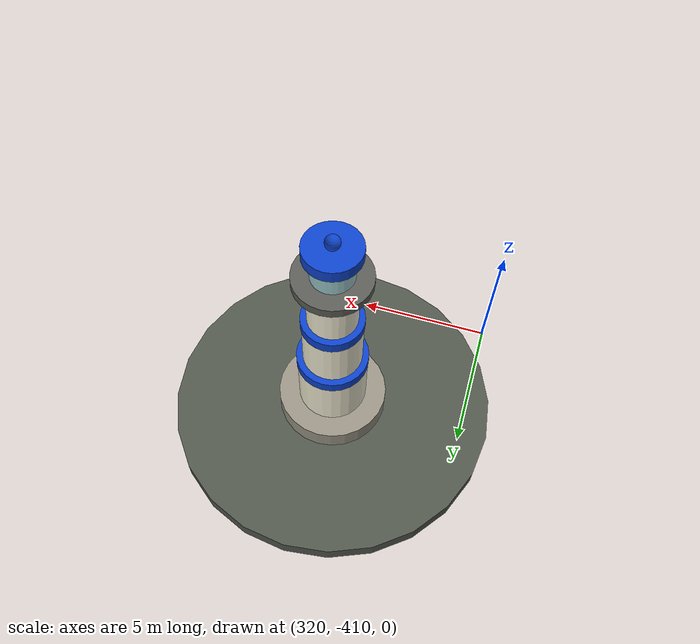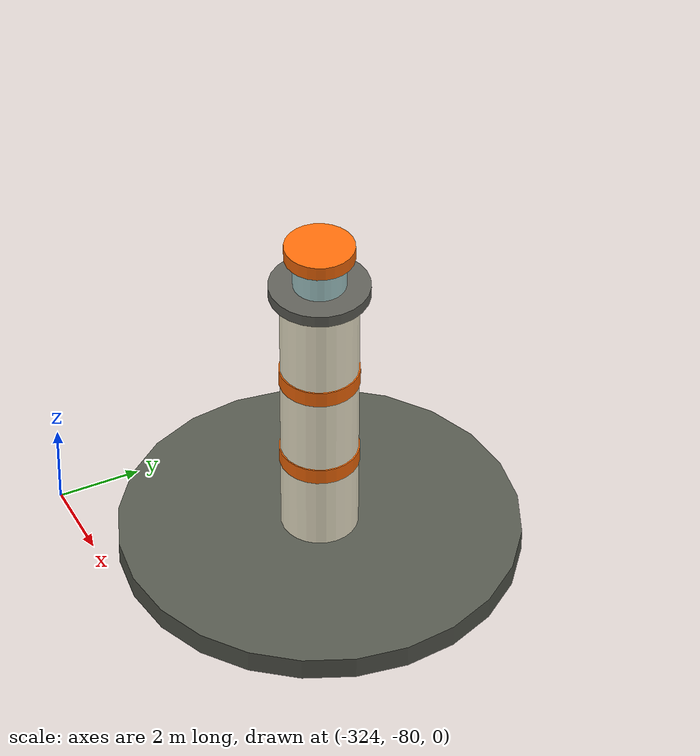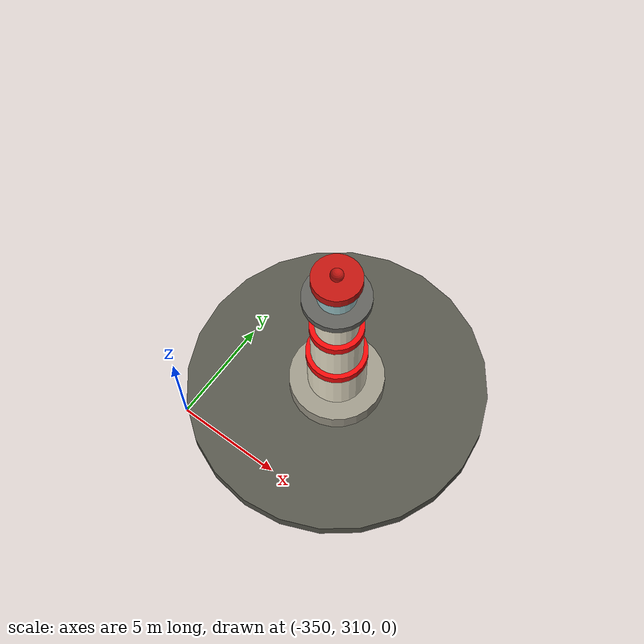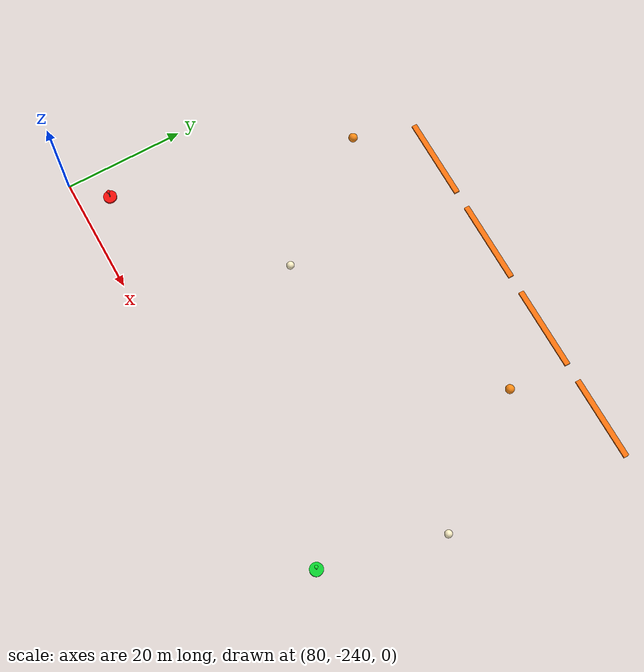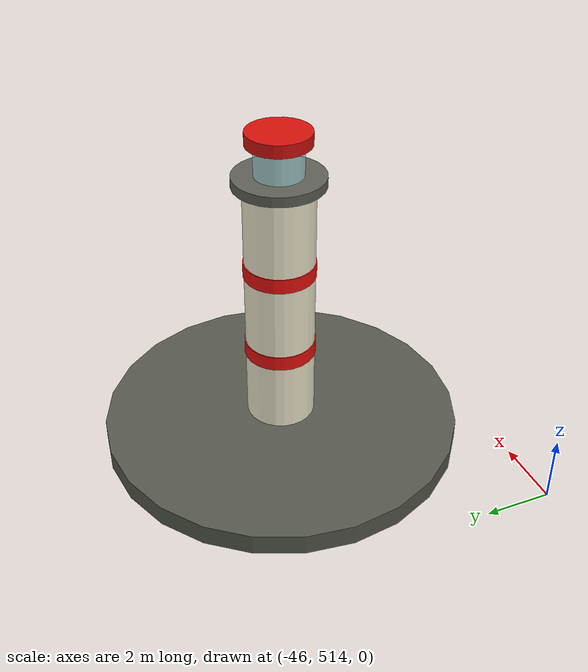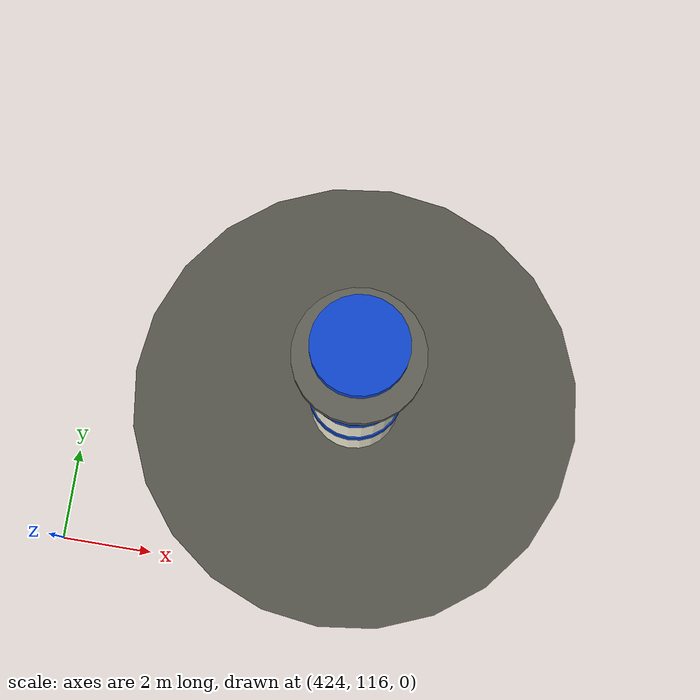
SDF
<?xml version="1.0"?>
<sdf version="1.10">
  <model name="ocean_surface_details">
    <static>true</static>
    <link name="details">
      <collision name="red_marker_1_collision"><pose>85 -235 0.35 0 0 0</pose><geometry><cylinder><radius>1.1</radius><length>0.7</length></cylinder></geometry></collision>
      <visual name="red_marker_1_base"><pose>85 -235 0.20 0 0 0</pose><geometry><cylinder><radius>1.1</radius><length>0.4</length></cylinder></geometry><material><ambient>0.45 0.02 0.02 1</ambient><diffuse>0.95 0.05 0.04 1</diffuse></material></visual>
      <visual name="red_marker_1_mast"><pose>85 -235 1.25 0 0 0</pose><geometry><cylinder><radius>0.08</radius><length>1.8</length></cylinder></geometry><material><ambient>0.18 0.18 0.16 1</ambient><diffuse>0.45 0.45 0.40 1</diffuse></material></visual>
      <visual name="red_marker_1_top"><pose>85 -235 2.25 0 0 0</pose><geometry><sphere><radius>0.28</radius></sphere></geometry><material><ambient>0.7 0.02 0.02 1</ambient><diffuse>1 0.04 0.04 1</diffuse></material></visual>

      <collision name="green_marker_1_collision"><pose>155 -235 0.35 0 0 0</pose><geometry><cylinder><radius>1.1</radius><length>0.7</length></cylinder></geometry></collision>
      <visual name="green_marker_1_base"><pose>155 -235 0.20 0 0 0</pose><geometry><cylinder><radius>1.1</radius><length>0.4</length></cylinder></geometry><material><ambient>0.02 0.34 0.08 1</ambient><diffuse>0.04 0.82 0.18 1</diffuse></material></visual>
      <visual name="green_marker_1_mast"><pose>155 -235 1.25 0 0 0</pose><geometry><cylinder><radius>0.08</radius><length>1.8</length></cylinder></geometry><material><ambient>0.18 0.18 0.16 1</ambient><diffuse>0.45 0.45 0.40 1</diffuse></material></visual>
      <visual name="green_marker_1_top"><pose>155 -235 2.25 0 0 0</pose><geometry><sphere><radius>0.28</radius></sphere></geometry><material><ambient>0.02 0.6 0.1 1</ambient><diffuse>0.04 1 0.18 1</diffuse></material></visual>

      <collision name="red_marker_2_collision"><pose>60 -310 0.35 0 0 0</pose><geometry><cylinder><radius>1.1</radius><length>0.7</length></cylinder></geometry></collision>
      <visual name="red_marker_2_base"><pose>60 -310 0.20 0 0 0</pose><geometry><cylinder><radius>1.1</radius><length>0.4</length></cylinder></geometry><material><ambient>0.45 0.02 0.02 1</ambient><diffuse>0.95 0.05 0.04 1</diffuse></material></visual>
      <visual name="red_marker_2_mast"><pose>60 -310 1.25 0 0 0</pose><geometry><cylinder><radius>0.08</radius><length>1.8</length></cylinder></geometry><material><ambient>0.18 0.18 0.16 1</ambient><diffuse>0.45 0.45 0.40 1</diffuse></material></visual>
      <visual name="red_marker_2_top"><pose>60 -310 2.25 0 0 0</pose><geometry><sphere><radius>0.28</radius></sphere></geometry><material><ambient>0.7 0.02 0.02 1</ambient><diffuse>1 0.04 0.04 1</diffuse></material></visual>

      <collision name="green_marker_2_collision"><pose>190 -310 0.35 0 0 0</pose><geometry><cylinder><radius>1.1</radius><length>0.7</length></cylinder></geometry></collision>
      <visual name="green_marker_2_base"><pose>190 -310 0.20 0 0 0</pose><geometry><cylinder><radius>1.1</radius><length>0.4</length></cylinder></geometry><material><ambient>0.02 0.34 0.08 1</ambient><diffuse>0.04 0.82 0.18 1</diffuse></material></visual>
      <visual name="green_marker_2_mast"><pose>190 -310 1.25 0 0 0</pose><geometry><cylinder><radius>0.08</radius><length>1.8</length></cylinder></geometry><material><ambient>0.18 0.18 0.16 1</ambient><diffuse>0.45 0.45 0.40 1</diffuse></material></visual>
      <visual name="green_marker_2_top"><pose>190 -310 2.25 0 0 0</pose><geometry><sphere><radius>0.28</radius></sphere></geometry><material><ambient>0.02 0.6 0.1 1</ambient><diffuse>0.04 1 0.18 1</diffuse></material></visual>

      <visual name="weather_buoy_float"><pose>-230 -260 0.30 0 0 0</pose><geometry><cylinder><radius>1.8</radius><length>0.6</length></cylinder></geometry><material><ambient>0.78 0.48 0.03 1</ambient><diffuse>1.0 0.68 0.08 1</diffuse></material></visual>
      <visual name="weather_buoy_mast"><pose>-230 -260 2.0 0 0 0</pose><geometry><cylinder><radius>0.12</radius><length>3.0</length></cylinder></geometry><material><ambient>0.18 0.18 0.18 1</ambient><diffuse>0.50 0.50 0.47 1</diffuse></material></visual>
      <visual name="weather_buoy_sensor"><pose>-230 -260 3.65 0 0 0</pose><geometry><sphere><radius>0.45</radius></sphere></geometry><material><ambient>0.85 0.85 0.80 1</ambient><diffuse>1 1 0.92 1</diffuse></material></visual>
      <visual name="weather_buoy_solar_left"><pose>-231.1 -260 1.65 0 0.45 0</pose><geometry><box><size>1.6 0.08 0.75</size></box></geometry><material><ambient>0.02 0.08 0.14 1</ambient><diffuse>0.04 0.18 0.32 1</diffuse></material></visual>
      <visual name="weather_buoy_solar_right"><pose>-228.9 -260 1.65 0 -0.45 0</pose><geometry><box><size>1.6 0.08 0.75</size></box></geometry><material><ambient>0.02 0.08 0.14 1</ambient><diffuse>0.04 0.18 0.32 1</diffuse></material></visual>

      <visual name="mooring_buoy_1"><pose>95 -195 0.28 0 0 0</pose><geometry><sphere><radius>0.75</radius></sphere></geometry><material><ambient>0.86 0.42 0.02 1</ambient><diffuse>1.0 0.55 0.08 1</diffuse></material></visual>
      <visual name="mooring_buoy_2"><pose>145 -195 0.28 0 0 0</pose><geometry><sphere><radius>0.75</radius></sphere></geometry><material><ambient>0.86 0.42 0.02 1</ambient><diffuse>1.0 0.55 0.08 1</diffuse></material></visual>
      <visual name="mooring_buoy_3"><pose>110 -215 0.28 0 0 0</pose><geometry><sphere><radius>0.65</radius></sphere></geometry><material><ambient>0.92 0.88 0.74 1</ambient><diffuse>1.0 0.95 0.78 1</diffuse></material></visual>
      <visual name="mooring_buoy_4"><pose>160 -215 0.28 0 0 0</pose><geometry><sphere><radius>0.65</radius></sphere></geometry><material><ambient>0.92 0.88 0.74 1</ambient><diffuse>1.0 0.95 0.78 1</diffuse></material></visual>

      <visual name="safety_boom_1"><pose>105 -185 0.18 0 0 0</pose><geometry><box><size>14 0.9 0.35</size></box></geometry><material><ambient>0.9 0.32 0.02 1</ambient><diffuse>1.0 0.45 0.05 1</diffuse></material></visual>
      <visual name="safety_boom_2"><pose>122 -185 0.18 0 0 0</pose><geometry><box><size>14 0.9 0.35</size></box></geometry><material><ambient>0.9 0.32 0.02 1</ambient><diffuse>1.0 0.45 0.05 1</diffuse></material></visual>
      <visual name="safety_boom_3"><pose>139 -185 0.18 0 0 0</pose><geometry><box><size>14 0.9 0.35</size></box></geometry><material><ambient>0.9 0.32 0.02 1</ambient><diffuse>1.0 0.45 0.05 1</diffuse></material></visual>
      <visual name="safety_boom_4"><pose>156 -185 0.18 0 0 0</pose><geometry><box><size>14 0.9 0.35</size></box></geometry><material><ambient>0.9 0.32 0.02 1</ambient><diffuse>1.0 0.45 0.05 1</diffuse></material></visual>

      <visual name="service_skiff_hull"><pose>220 -260 0.28 0 0 0.35</pose><geometry><box><size>7.5 2.2 0.55</size></box></geometry><material><ambient>0.08 0.12 0.16 1</ambient><diffuse>0.16 0.25 0.34 1</diffuse></material></visual>
      <visual name="service_skiff_bow"><pose>223.4 -258.75 0.38 0 0 0.35</pose><geometry><sphere><radius>1.15</radius></sphere></geometry><material><ambient>0.08 0.12 0.16 1</ambient><diffuse>0.16 0.25 0.34 1</diffuse></material></visual>
      <visual name="service_skiff_cabin"><pose>219.2 -260.3 0.95 0 0 0.35</pose><geometry><box><size>1.8 1.4 0.95</size></box></geometry><material><ambient>0.70 0.78 0.78 1</ambient><diffuse>0.88 0.95 0.95 1</diffuse></material></visual>

      <collision name="west_lighthouse_collision"><pose>-345 315 5.9 0 0 0</pose><geometry><cylinder><radius>2.2</radius><length>11.8</length></cylinder></geometry></collision>
      <visual name="west_lighthouse_rock"><pose>-345 315 0.38 0 0 0</pose><geometry><cylinder><radius>7.0</radius><length>0.75</length></cylinder></geometry><material><ambient>0.18 0.18 0.16 1</ambient><diffuse>0.34 0.34 0.30 1</diffuse></material></visual>
      <visual name="west_lighthouse_plinth"><pose>-345 315 1.05 0 0 0</pose><geometry><cylinder><radius>2.2</radius><length>1.2</length></cylinder></geometry><material><ambient>0.35 0.33 0.30 1</ambient><diffuse>0.62 0.60 0.54 1</diffuse></material></visual>
      <visual name="west_lighthouse_lower"><pose>-345 315 3.0 0 0 0</pose><geometry><cylinder><radius>1.35</radius><length>2.7</length></cylinder></geometry><material><ambient>0.78 0.76 0.68 1</ambient><diffuse>0.95 0.92 0.82 1</diffuse></material></visual>
      <visual name="west_lighthouse_red_band_1"><pose>-345 315 4.15 0 0 0</pose><geometry><cylinder><radius>1.38</radius><length>0.45</length></cylinder></geometry><material><ambient>0.48 0.02 0.02 1</ambient><diffuse>0.95 0.04 0.04 1</diffuse></material></visual>
      <visual name="west_lighthouse_mid"><pose>-345 315 5.55 0 0 0</pose><geometry><cylinder><radius>1.16</radius><length>2.4</length></cylinder></geometry><material><ambient>0.78 0.76 0.68 1</ambient><diffuse>0.95 0.92 0.82 1</diffuse></material></visual>
      <visual name="west_lighthouse_red_band_2"><pose>-345 315 6.65 0 0 0</pose><geometry><cylinder><radius>1.18</radius><length>0.42</length></cylinder></geometry><material><ambient>0.48 0.02 0.02 1</ambient><diffuse>0.95 0.04 0.04 1</diffuse></material></visual>
      <visual name="west_lighthouse_upper"><pose>-345 315 8.0 0 0 0</pose><geometry><cylinder><radius>0.95</radius><length>2.3</length></cylinder></geometry><material><ambient>0.78 0.76 0.68 1</ambient><diffuse>0.95 0.92 0.82 1</diffuse></material></visual>
      <visual name="west_lighthouse_gallery"><pose>-345 315 9.25 0 0 0</pose><geometry><cylinder><radius>1.45</radius><length>0.35</length></cylinder></geometry><material><ambient>0.16 0.16 0.16 1</ambient><diffuse>0.38 0.38 0.36 1</diffuse></material></visual>
      <visual name="west_lighthouse_lantern"><pose>-345 315 10.0 0 0 0</pose><geometry><cylinder><radius>0.82</radius><length>1.15</length></cylinder></geometry><material><ambient>0.55 0.72 0.74 0.68</ambient><diffuse>0.70 0.95 0.98 0.68</diffuse></material></visual>
      <visual name="west_lighthouse_roof"><pose>-345 315 10.75 0 0 0</pose><geometry><cylinder><radius>1.05</radius><length>0.45</length></cylinder></geometry><material><ambient>0.42 0.04 0.03 1</ambient><diffuse>0.76 0.08 0.06 1</diffuse></material></visual>
      <visual name="west_lighthouse_cap"><pose>-345 315 11.15 0 0 0</pose><geometry><sphere><radius>0.28</radius></sphere></geometry><material><ambient>0.42 0.04 0.03 1</ambient><diffuse>0.76 0.08 0.06 1</diffuse></material></visual>

      <collision name="south_lighthouse_collision"><pose>325 -405 5.4 0 0 0</pose><geometry><cylinder><radius>2.0</radius><length>10.8</length></cylinder></geometry></collision>
      <visual name="south_lighthouse_rock"><pose>325 -405 0.35 0 0 0</pose><geometry><cylinder><radius>6.0</radius><length>0.7</length></cylinder></geometry><material><ambient>0.17 0.18 0.16 1</ambient><diffuse>0.32 0.34 0.30 1</diffuse></material></visual>
      <visual name="south_lighthouse_plinth"><pose>325 -405 0.95 0 0 0</pose><geometry><cylinder><radius>2.0</radius><length>1.1</length></cylinder></geometry><material><ambient>0.34 0.32 0.29 1</ambient><diffuse>0.60 0.58 0.52 1</diffuse></material></visual>
      <visual name="south_lighthouse_lower"><pose>325 -405 2.75 0 0 0</pose><geometry><cylinder><radius>1.25</radius><length>2.5</length></cylinder></geometry><material><ambient>0.80 0.78 0.70 1</ambient><diffuse>0.96 0.94 0.84 1</diffuse></material></visual>
      <visual name="south_lighthouse_blue_band_1"><pose>325 -405 3.85 0 0 0</pose><geometry><cylinder><radius>1.28</radius><length>0.40</length></cylinder></geometry><material><ambient>0.02 0.14 0.42 1</ambient><diffuse>0.05 0.26 0.80 1</diffuse></material></visual>
      <visual name="south_lighthouse_mid"><pose>325 -405 5.15 0 0 0</pose><geometry><cylinder><radius>1.05</radius><length>2.2</length></cylinder></geometry><material><ambient>0.80 0.78 0.70 1</ambient><diffuse>0.96 0.94 0.84 1</diffuse></material></visual>
      <visual name="south_lighthouse_blue_band_2"><pose>325 -405 6.15 0 0 0</pose><geometry><cylinder><radius>1.08</radius><length>0.40</length></cylinder></geometry><material><ambient>0.02 0.14 0.42 1</ambient><diffuse>0.05 0.26 0.80 1</diffuse></material></visual>
      <visual name="south_lighthouse_upper"><pose>325 -405 7.35 0 0 0</pose><geometry><cylinder><radius>0.86</radius><length>2.0</length></cylinder></geometry><material><ambient>0.80 0.78 0.70 1</ambient><diffuse>0.96 0.94 0.84 1</diffuse></material></visual>
      <visual name="south_lighthouse_gallery"><pose>325 -405 8.48 0 0 0</pose><geometry><cylinder><radius>1.30</radius><length>0.32</length></cylinder></geometry><material><ambient>0.15 0.15 0.15 1</ambient><diffuse>0.36 0.36 0.34 1</diffuse></material></visual>
      <visual name="south_lighthouse_lantern"><pose>325 -405 9.15 0 0 0</pose><geometry><cylinder><radius>0.72</radius><length>1.0</length></cylinder></geometry><material><ambient>0.55 0.72 0.74 0.68</ambient><diffuse>0.70 0.95 0.98 0.68</diffuse></material></visual>
      <visual name="south_lighthouse_roof"><pose>325 -405 9.80 0 0 0</pose><geometry><cylinder><radius>0.95</radius><length>0.42</length></cylinder></geometry><material><ambient>0.02 0.14 0.42 1</ambient><diffuse>0.05 0.26 0.80 1</diffuse></material></visual>
      <visual name="south_lighthouse_cap"><pose>325 -405 10.18 0 0 0</pose><geometry><sphere><radius>0.25</radius></sphere></geometry><material><ambient>0.02 0.14 0.42 1</ambient><diffuse>0.05 0.26 0.80 1</diffuse></material></visual>

      <visual name="outer_red_marker_3_base"><pose>-65 -375 0.22 0 0 0</pose><geometry><cylinder><radius>1.05</radius><length>0.44</length></cylinder></geometry><material><ambient>0.45 0.02 0.02 1</ambient><diffuse>0.95 0.05 0.04 1</diffuse></material></visual>
      <visual name="outer_red_marker_3_mast"><pose>-65 -375 1.45 0 0 0</pose><geometry><cylinder><radius>0.09</radius><length>2.1</length></cylinder></geometry><material><ambient>0.18 0.18 0.16 1</ambient><diffuse>0.45 0.45 0.40 1</diffuse></material></visual>
      <visual name="outer_red_marker_3_top"><pose>-65 -375 2.7 0 0 0</pose><geometry><box><size>0.62 0.62 0.62</size></box></geometry><material><ambient>0.7 0.02 0.02 1</ambient><diffuse>1 0.04 0.04 1</diffuse></material></visual>
      <visual name="outer_green_marker_3_base"><pose>230 -375 0.22 0 0 0</pose><geometry><cylinder><radius>1.05</radius><length>0.44</length></cylinder></geometry><material><ambient>0.02 0.34 0.08 1</ambient><diffuse>0.04 0.82 0.18 1</diffuse></material></visual>
      <visual name="outer_green_marker_3_mast"><pose>230 -375 1.45 0 0 0</pose><geometry><cylinder><radius>0.09</radius><length>2.1</length></cylinder></geometry><material><ambient>0.18 0.18 0.16 1</ambient><diffuse>0.45 0.45 0.40 1</diffuse></material></visual>
      <visual name="outer_green_marker_3_top"><pose>230 -375 2.7 0 0 0</pose><geometry><sphere><radius>0.36</radius></sphere></geometry><material><ambient>0.02 0.6 0.1 1</ambient><diffuse>0.04 1 0.18 1</diffuse></material></visual>

      <visual name="reef_warning_float_1"><pose>-165 -150 0.32 0 0 0</pose><geometry><sphere><radius>0.82</radius></sphere></geometry><material><ambient>0.86 0.18 0.02 1</ambient><diffuse>1.0 0.26 0.04 1</diffuse></material></visual>
      <visual name="reef_warning_float_2"><pose>-120 -178 0.32 0 0 0</pose><geometry><sphere><radius>0.82</radius></sphere></geometry><material><ambient>0.86 0.18 0.02 1</ambient><diffuse>1.0 0.26 0.04 1</diffuse></material></visual>
      <visual name="reef_warning_float_3"><pose>-78 -145 0.32 0 0 0</pose><geometry><sphere><radius>0.82</radius></sphere></geometry><material><ambient>0.86 0.18 0.02 1</ambient><diffuse>1.0 0.26 0.04 1</diffuse></material></visual>
      <visual name="white_mooring_float_5"><pose>20 -250 0.26 0 0 0</pose><geometry><sphere><radius>0.62</radius></sphere></geometry><material><ambient>0.92 0.88 0.74 1</ambient><diffuse>1.0 0.95 0.78 1</diffuse></material></visual>
      <visual name="white_mooring_float_6"><pose>250 -220 0.26 0 0 0</pose><geometry><sphere><radius>0.62</radius></sphere></geometry><material><ambient>0.92 0.88 0.74 1</ambient><diffuse>1.0 0.95 0.78 1</diffuse></material></visual>

      <collision name="north_lighthouse_collision"><pose>-40 520 4.75 0 0 0</pose><geometry><cylinder><radius>1.6</radius><length>9.5</length></cylinder></geometry></collision>
      <visual name="north_lighthouse_rock"><pose>-40 520 0.32 0 0 0</pose><geometry><cylinder><radius>5.5</radius><length>0.64</length></cylinder></geometry><material><ambient>0.17 0.18 0.16 1</ambient><diffuse>0.34 0.35 0.31 1</diffuse></material></visual>
      <visual name="north_lighthouse_tower"><pose>-40 520 4.6 0 0 0</pose><geometry><cylinder><radius>1.05</radius><length>7.7</length></cylinder></geometry><material><ambient>0.82 0.80 0.72 1</ambient><diffuse>0.98 0.95 0.84 1</diffuse></material></visual>
      <visual name="north_lighthouse_band_lower"><pose>-40 520 3.15 0 0 0</pose><geometry><cylinder><radius>1.08</radius><length>0.45</length></cylinder></geometry><material><ambient>0.52 0.04 0.03 1</ambient><diffuse>0.95 0.07 0.05 1</diffuse></material></visual>
      <visual name="north_lighthouse_band_upper"><pose>-40 520 5.85 0 0 0</pose><geometry><cylinder><radius>1.08</radius><length>0.45</length></cylinder></geometry><material><ambient>0.52 0.04 0.03 1</ambient><diffuse>0.95 0.07 0.05 1</diffuse></material></visual>
      <visual name="north_lighthouse_gallery"><pose>-40 520 8.65 0 0 0</pose><geometry><cylinder><radius>1.35</radius><length>0.3</length></cylinder></geometry><material><ambient>0.16 0.16 0.15 1</ambient><diffuse>0.38 0.38 0.35 1</diffuse></material></visual>
      <visual name="north_lighthouse_lantern"><pose>-40 520 9.25 0 0 0</pose><geometry><cylinder><radius>0.72</radius><length>0.9</length></cylinder></geometry><material><ambient>0.60 0.76 0.78 0.7</ambient><diffuse>0.76 0.98 1.0 0.7</diffuse></material></visual>
      <visual name="north_lighthouse_roof"><pose>-40 520 9.9 0 0 0</pose><geometry><cylinder><radius>0.95</radius><length>0.38</length></cylinder></geometry><material><ambient>0.52 0.04 0.03 1</ambient><diffuse>0.85 0.07 0.05 1</diffuse></material></visual>

      <collision name="east_lighthouse_collision"><pose>430 120 4.35 0 0 0</pose><geometry><cylinder><radius>1.55</radius><length>8.7</length></cylinder></geometry></collision>
      <visual name="east_lighthouse_rock"><pose>430 120 0.30 0 0 0</pose><geometry><cylinder><radius>5.0</radius><length>0.6</length></cylinder></geometry><material><ambient>0.18 0.18 0.16 1</ambient><diffuse>0.34 0.34 0.30 1</diffuse></material></visual>
      <visual name="east_lighthouse_tower"><pose>430 120 4.25 0 0 0</pose><geometry><cylinder><radius>0.98</radius><length>7.1</length></cylinder></geometry><material><ambient>0.80 0.78 0.70 1</ambient><diffuse>0.96 0.94 0.84 1</diffuse></material></visual>
      <visual name="east_lighthouse_blue_band_lower"><pose>430 120 2.9 0 0 0</pose><geometry><cylinder><radius>1.01</radius><length>0.42</length></cylinder></geometry><material><ambient>0.02 0.14 0.42 1</ambient><diffuse>0.06 0.28 0.82 1</diffuse></material></visual>
      <visual name="east_lighthouse_blue_band_upper"><pose>430 120 5.35 0 0 0</pose><geometry><cylinder><radius>1.01</radius><length>0.42</length></cylinder></geometry><material><ambient>0.02 0.14 0.42 1</ambient><diffuse>0.06 0.28 0.82 1</diffuse></material></visual>
      <visual name="east_lighthouse_gallery"><pose>430 120 7.95 0 0 0</pose><geometry><cylinder><radius>1.25</radius><length>0.3</length></cylinder></geometry><material><ambient>0.16 0.16 0.15 1</ambient><diffuse>0.38 0.38 0.35 1</diffuse></material></visual>
      <visual name="east_lighthouse_lantern"><pose>430 120 8.5 0 0 0</pose><geometry><cylinder><radius>0.68</radius><length>0.85</length></cylinder></geometry><material><ambient>0.60 0.76 0.78 0.7</ambient><diffuse>0.76 0.98 1.0 0.7</diffuse></material></visual>
      <visual name="east_lighthouse_roof"><pose>430 120 9.1 0 0 0</pose><geometry><cylinder><radius>0.9</radius><length>0.35</length></cylinder></geometry><material><ambient>0.02 0.14 0.42 1</ambient><diffuse>0.06 0.28 0.82 1</diffuse></material></visual>

      <collision name="river_entry_lighthouse_collision"><pose>-320 -75 4.15 0 0 0</pose><geometry><cylinder><radius>1.45</radius><length>8.3</length></cylinder></geometry></collision>
      <visual name="river_entry_lighthouse_rock"><pose>-320 -75 0.28 0 0 0</pose><geometry><cylinder><radius>4.8</radius><length>0.56</length></cylinder></geometry><material><ambient>0.17 0.18 0.16 1</ambient><diffuse>0.34 0.35 0.31 1</diffuse></material></visual>
      <visual name="river_entry_lighthouse_tower"><pose>-320 -75 4.05 0 0 0</pose><geometry><cylinder><radius>0.92</radius><length>6.8</length></cylinder></geometry><material><ambient>0.82 0.80 0.72 1</ambient><diffuse>0.98 0.95 0.84 1</diffuse></material></visual>
      <visual name="river_entry_lighthouse_orange_band_lower"><pose>-320 -75 2.75 0 0 0</pose><geometry><cylinder><radius>0.95</radius><length>0.40</length></cylinder></geometry><material><ambient>0.72 0.28 0.02 1</ambient><diffuse>1.0 0.43 0.04 1</diffuse></material></visual>
      <visual name="river_entry_lighthouse_orange_band_upper"><pose>-320 -75 5.1 0 0 0</pose><geometry><cylinder><radius>0.95</radius><length>0.40</length></cylinder></geometry><material><ambient>0.72 0.28 0.02 1</ambient><diffuse>1.0 0.43 0.04 1</diffuse></material></visual>
      <visual name="river_entry_lighthouse_gallery"><pose>-320 -75 7.6 0 0 0</pose><geometry><cylinder><radius>1.18</radius><length>0.28</length></cylinder></geometry><material><ambient>0.16 0.16 0.15 1</ambient><diffuse>0.38 0.38 0.35 1</diffuse></material></visual>
      <visual name="river_entry_lighthouse_lantern"><pose>-320 -75 8.1 0 0 0</pose><geometry><cylinder><radius>0.62</radius><length>0.8</length></cylinder></geometry><material><ambient>0.60 0.76 0.78 0.7</ambient><diffuse>0.76 0.98 1.0 0.7</diffuse></material></visual>
      <visual name="river_entry_lighthouse_roof"><pose>-320 -75 8.68 0 0 0</pose><geometry><cylinder><radius>0.82</radius><length>0.34</length></cylinder></geometry><material><ambient>0.72 0.28 0.02 1</ambient><diffuse>1.0 0.43 0.04 1</diffuse></material></visual>

      <visual name="new_buoy_1_float"><pose>-230 35 0.30 0 0 0</pose><geometry><sphere><radius>0.78</radius></sphere></geometry><material><ambient>0.80 0.12 0.02 1</ambient><diffuse>1.0 0.18 0.04 1</diffuse></material></visual>
      <visual name="new_buoy_1_mast"><pose>-230 35 1.25 0 0 0</pose><geometry><cylinder><radius>0.06</radius><length>1.55</length></cylinder></geometry><material><ambient>0.18 0.18 0.16 1</ambient><diffuse>0.45 0.45 0.40 1</diffuse></material></visual>
      <visual name="new_buoy_2_float"><pose>-230 125 0.30 0 0 0</pose><geometry><sphere><radius>0.78</radius></sphere></geometry><material><ambient>0.02 0.42 0.08 1</ambient><diffuse>0.04 0.95 0.18 1</diffuse></material></visual>
      <visual name="new_buoy_2_mast"><pose>-230 125 1.25 0 0 0</pose><geometry><cylinder><radius>0.06</radius><length>1.55</length></cylinder></geometry><material><ambient>0.18 0.18 0.16 1</ambient><diffuse>0.45 0.45 0.40 1</diffuse></material></visual>
      <visual name="new_buoy_3_float"><pose>285 40 0.30 0 0 0</pose><geometry><sphere><radius>0.78</radius></sphere></geometry><material><ambient>0.80 0.12 0.02 1</ambient><diffuse>1.0 0.18 0.04 1</diffuse></material></visual>
      <visual name="new_buoy_3_mast"><pose>285 40 1.25 0 0 0</pose><geometry><cylinder><radius>0.06</radius><length>1.55</length></cylinder></geometry><material><ambient>0.18 0.18 0.16 1</ambient><diffuse>0.45 0.45 0.40 1</diffuse></material></visual>
      <visual name="new_buoy_4_float"><pose>285 130 0.30 0 0 0</pose><geometry><sphere><radius>0.78</radius></sphere></geometry><material><ambient>0.02 0.42 0.08 1</ambient><diffuse>0.04 0.95 0.18 1</diffuse></material></visual>
      <visual name="new_buoy_4_mast"><pose>285 130 1.25 0 0 0</pose><geometry><cylinder><radius>0.06</radius><length>1.55</length></cylinder></geometry><material><ambient>0.18 0.18 0.16 1</ambient><diffuse>0.45 0.45 0.40 1</diffuse></material></visual>

      <light name="red_marker_light" type="point"><pose>85 -235 2.6 0 0 0</pose><cast_shadows>false</cast_shadows><intensity>1.1</intensity><diffuse>1 0.05 0.03 1</diffuse><attenuation><range>45</range><constant>0.8</constant><linear>0.04</linear><quadratic>0.002</quadratic></attenuation></light>
      <light name="green_marker_light" type="point"><pose>155 -235 2.6 0 0 0</pose><cast_shadows>false</cast_shadows><intensity>1.1</intensity><diffuse>0.05 1 0.12 1</diffuse><attenuation><range>45</range><constant>0.8</constant><linear>0.04</linear><quadratic>0.002</quadratic></attenuation></light>
      <light name="weather_buoy_light" type="point"><pose>-230 -260 4.15 0 0 0</pose><cast_shadows>false</cast_shadows><intensity>1.0</intensity><diffuse>1 0.82 0.25 1</diffuse><attenuation><range>55</range><constant>0.8</constant><linear>0.035</linear><quadratic>0.0015</quadratic></attenuation></light>
      <light name="west_lighthouse_beacon" type="point"><pose>-345 315 10.15 0 0 0</pose><cast_shadows>false</cast_shadows><intensity>2.8</intensity><diffuse>1 0.88 0.55 1</diffuse><attenuation><range>130</range><constant>0.65</constant><linear>0.018</linear><quadratic>0.0006</quadratic></attenuation></light>
      <light name="south_lighthouse_beacon" type="point"><pose>325 -405 9.25 0 0 0</pose><cast_shadows>false</cast_shadows><intensity>2.4</intensity><diffuse>0.55 0.74 1 1</diffuse><attenuation><range>120</range><constant>0.65</constant><linear>0.02</linear><quadratic>0.0007</quadratic></attenuation></light>
      <light name="outer_red_marker_light" type="point"><pose>-65 -375 2.95 0 0 0</pose><cast_shadows>false</cast_shadows><intensity>0.9</intensity><diffuse>1 0.05 0.03 1</diffuse><attenuation><range>42</range><constant>0.8</constant><linear>0.04</linear><quadratic>0.002</quadratic></attenuation></light>
      <light name="outer_green_marker_light" type="point"><pose>230 -375 2.95 0 0 0</pose><cast_shadows>false</cast_shadows><intensity>0.9</intensity><diffuse>0.05 1 0.12 1</diffuse><attenuation><range>42</range><constant>0.8</constant><linear>0.04</linear><quadratic>0.002</quadratic></attenuation></light>
      <light name="north_lighthouse_beacon" type="point"><pose>-40 520 9.3 0 0 0</pose><cast_shadows>false</cast_shadows><intensity>2.4</intensity><diffuse>1 0.88 0.55 1</diffuse><attenuation><range>120</range><constant>0.65</constant><linear>0.02</linear><quadratic>0.0007</quadratic></attenuation></light>
      <light name="east_lighthouse_beacon" type="point"><pose>430 120 8.55 0 0 0</pose><cast_shadows>false</cast_shadows><intensity>2.2</intensity><diffuse>0.55 0.74 1 1</diffuse><attenuation><range>110</range><constant>0.65</constant><linear>0.02</linear><quadratic>0.0008</quadratic></attenuation></light>
      <light name="river_entry_lighthouse_beacon" type="point"><pose>-320 -75 8.15 0 0 0</pose><cast_shadows>false</cast_shadows><intensity>2.0</intensity><diffuse>1 0.62 0.22 1</diffuse><attenuation><range>105</range><constant>0.65</constant><linear>0.02</linear><quadratic>0.0008</quadratic></attenuation></light>
      <light name="new_buoy_1_light" type="point"><pose>-230 35 1.9 0 0 0</pose><cast_shadows>false</cast_shadows><intensity>0.7</intensity><diffuse>1 0.05 0.03 1</diffuse><attenuation><range>34</range><constant>0.8</constant><linear>0.05</linear><quadratic>0.0025</quadratic></attenuation></light>
      <light name="new_buoy_2_light" type="point"><pose>-230 125 1.9 0 0 0</pose><cast_shadows>false</cast_shadows><intensity>0.7</intensity><diffuse>0.05 1 0.12 1</diffuse><attenuation><range>34</range><constant>0.8</constant><linear>0.05</linear><quadratic>0.0025</quadratic></attenuation></light>
      <light name="new_buoy_3_light" type="point"><pose>285 40 1.9 0 0 0</pose><cast_shadows>false</cast_shadows><intensity>0.7</intensity><diffuse>1 0.05 0.03 1</diffuse><attenuation><range>34</range><constant>0.8</constant><linear>0.05</linear><quadratic>0.0025</quadratic></attenuation></light>
      <light name="new_buoy_4_light" type="point"><pose>285 130 1.9 0 0 0</pose><cast_shadows>false</cast_shadows><intensity>0.7</intensity><diffuse>0.05 1 0.12 1</diffuse><attenuation><range>34</range><constant>0.8</constant><linear>0.05</linear><quadratic>0.0025</quadratic></attenuation></light>
    </link>
  </model>
</sdf>
